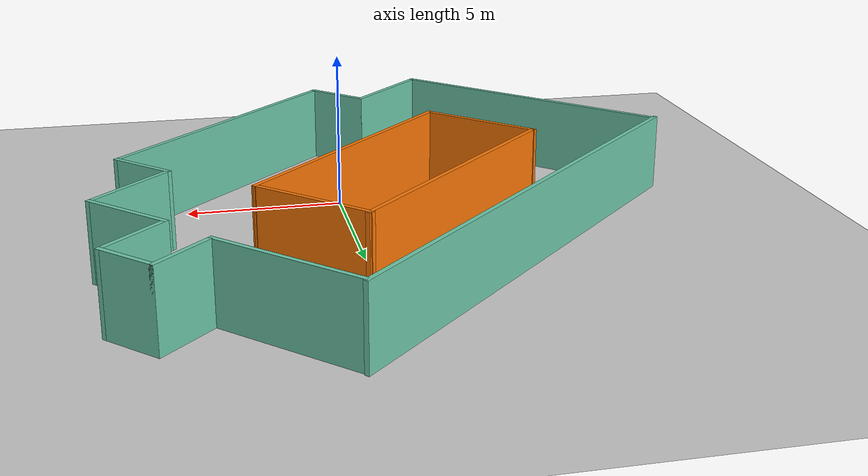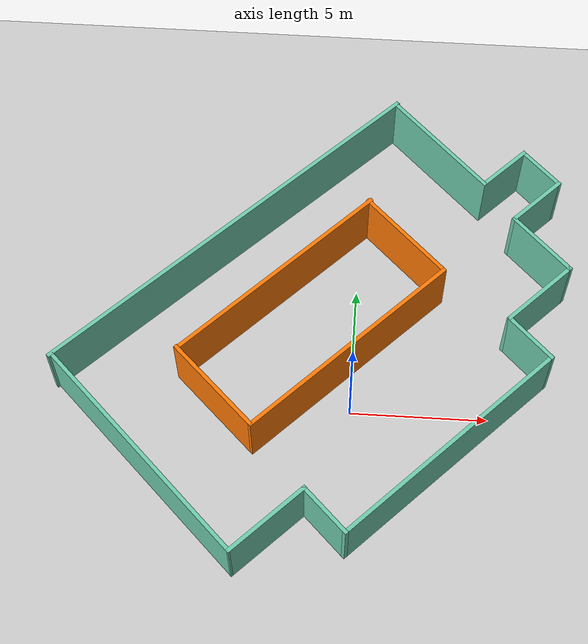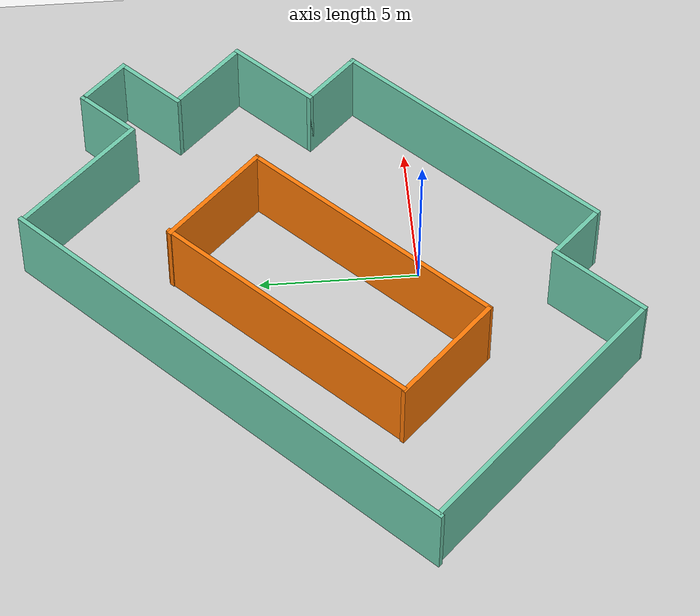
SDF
<sdf version="1.6">
 <world name="default">
  <light name="sun" type="directional">
   <pose>0 0 10 0 -0 0</pose>
   <diffuse>0.8 0.8 0.8 1</diffuse>
   <specular>0.1 0.1 0.1 1</specular>
   <attenuation>
    <range>1000</range>
    <constant>0.9</constant>
    <linear>0.01</linear>
    <quadratic>0.001</quadratic>
   </attenuation>
   <direction>-0.5 0.5 -1</direction>
  </light>
  <model name="ground_plane">
   <static>1</static>
   <link name="link">
    <collision name="collision">
     <geometry><plane><normal>0 0 1</normal><size>100 100</size></plane></geometry>
     <surface><friction><ode><mu>100</mu><mu2>50</mu2></ode></friction></surface>
    </collision>
    <visual name="visual">
     <cast_shadows>0</cast_shadows>
     <geometry><plane><normal>0 0 1</normal><size>100 100</size></plane></geometry>
     <material>
      <script><uri>file://media/materials/scripts/gazebo.material</uri><name>Gazebo/Grey</name></script>
     </material>
    </visual>
   </link>
  </model>
  <gravity>0 0 -9.8</gravity>
  <magnetic_field>6e-06 2.3e-05 -4.2e-05</magnetic_field>
  <atmosphere type="adiabatic"/>
  <physics name="default_physics" default="0" type="ode">
   <max_step_size>0.001</max_step_size>
   <real_time_factor>1</real_time_factor>
   <real_time_update_rate>1000</real_time_update_rate>
  </physics>
  <scene><ambient>0.4 0.4 0.4 1</ambient><background>0.7 0.7 0.7 1</background><shadows>1</shadows></scene>
  <spherical_coordinates>
   <surface_model>EARTH_WGS84</surface_model>
   <latitude_deg>0</latitude_deg>
   <longitude_deg>0</longitude_deg>
   <elevation>0</elevation>
   <heading_deg>0</heading_deg>
  </spherical_coordinates>
  <model name="DEH2">
   <pose>-1.51231 2.91676 0 0 -0 0</pose>
   <link name="Wall_13">
    <collision name="Wall_13_Collision">
     <geometry><box><size>16.871 0.15 2.5</size></box></geometry>
     <pose>0 0 1.25 0 -0 0</pose>
    </collision>
    <visual name="Wall_13_Visual">
     <pose>0 0 1.25 0 -0 0</pose>
     <geometry><box><size>16.871 0.15 2.5</size></box></geometry>
     <material>
      <script><uri>file://media/materials/scripts/gazebo.material</uri><name>Gazebo/Grey</name></script>
      <ambient>0.435294 0.796078 0.67451 1</ambient>
     </material>
    </visual>
    <pose>-3.28805 3.41317 0 0 0 -2.3666</pose>
   </link>
   <link name="Wall_18">
    <collision name="Wall_18_Collision">
     <geometry><box><size>9.83707 0.15 2.5</size></box></geometry>
     <pose>0 0 1.25 0 -0 0</pose>
    </collision>
    <visual name="Wall_18_Visual">
     <pose>0 0 1.25 0 -0 0</pose>
     <geometry><box><size>9.83707 0.15 2.5</size></box></geometry>
     <material>
      <script><uri>file://media/materials/scripts/gazebo.material</uri><name>Gazebo/Grey</name></script>
      <ambient>0.435294 0.796078 0.67451 1</ambient>
     </material>
    </visual>
    <pose>-5.70139 -5.84993 0 0 0 -0.781979</pose>
   </link>
   <link name="Wall_19">
    <collision name="Wall_19_Collision">
     <geometry><box><size>3.5 0.15 2.5</size></box></geometry>
     <pose>0 0 1.25 0 -0 0</pose>
    </collision>
    <visual name="Wall_19_Visual">
     <pose>0 0 1.25 0 -0 0</pose>
     <geometry><box><size>3.5 0.15 2.5</size></box></geometry>
     <material>
      <script><uri>file://media/materials/scripts/gazebo.material</uri><name>Gazebo/Grey</name></script>
      <ambient>0.435294 0.796078 0.67451 1</ambient>
     </material>
    </visual>
    <pose>-1.08041 -8.07869 0 0 -0 0.785398</pose>
   </link>
   <link name="Wall_20">
    <collision name="Wall_20_Collision">
     <geometry><box><size>2.25 0.15 2.5</size></box></geometry>
     <pose>0 0 1.25 0 -0 0</pose>
    </collision>
    <visual name="Wall_20_Visual">
     <pose>0 0 1.25 0 -0 0</pose>
     <geometry><box><size>2.25 0.15 2.5</size></box></geometry>
     <material>
      <script><uri>file://media/materials/scripts/gazebo.material</uri><name>Gazebo/Grey</name></script>
      <ambient>0.435294 0.796078 0.67451 1</ambient>
     </material>
    </visual>
    <pose>0.846461 -7.63675 0 0 0 -0.785398</pose>
   </link>
   <link name="Wall_21">
    <collision name="Wall_21_Collision">
     <geometry><box><size>10 0.15 2.5</size></box></geometry>
     <pose>0 0 1.25 0 -0 0</pose>
    </collision>
    <visual name="Wall_21_Visual">
     <pose>0 0 1.25 0 -0 0</pose>
     <geometry><box><size>10 0.15 2.5</size></box></geometry>
     <material>
      <script><uri>file://media/materials/scripts/gazebo.material</uri><name>Gazebo/Grey</name></script>
      <ambient>0.435294 0.796078 0.67451 1</ambient>
     </material>
    </visual>
    <pose>5.07142 -4.89671 0 0 -0 0.785398</pose>
   </link>
   <link name="Wall_22">
    <collision name="Wall_22_Collision">
     <geometry><box><size>2.25 0.15 2.5</size></box></geometry>
     <pose>0 0 1.25 0 -0 0</pose>
    </collision>
    <visual name="Wall_22_Visual">
     <pose>0 0 1.25 0 -0 0</pose>
     <geometry><box><size>2.25 0.15 2.5</size></box></geometry>
     <material>
      <script><uri>file://media/materials/scripts/gazebo.material</uri><name>Gazebo/Grey</name></script>
      <ambient>0.435294 0.796078 0.67451 1</ambient>
     </material>
    </visual>
    <pose>7.81146 -0.671748 0 0 -0 2.35619</pose>
   </link>
   <link name="Wall_23">
    <collision name="Wall_23_Collision">
     <geometry><box><size>3.25 0.15 2.5</size></box></geometry>
     <pose>0 0 1.25 0 -0 0</pose>
    </collision>
    <visual name="Wall_23_Visual">
     <pose>0 0 1.25 0 -0 0</pose>
     <geometry><box><size>3.25 0.15 2.5</size></box></geometry>
     <material>
      <script><uri>file://media/materials/scripts/gazebo.material</uri><name>Gazebo/Grey</name></script>
      <ambient>0.435294 0.796078 0.67451 1</ambient>
     </material>
    </visual>
    <pose>8.16502 1.16673 0 0 -0 0.785398</pose>
   </link>
   <link name="Wall_24">
    <collision name="Wall_24_Collision">
     <geometry><box><size>3 0.15 2.5</size></box></geometry>
     <pose>0 0 1.25 0 -0 0</pose>
    </collision>
    <visual name="Wall_24_Visual">
     <pose>0 0 1.25 0 -0 0</pose>
     <geometry><box><size>3 0.15 2.5</size></box></geometry>
     <material>
      <script><uri>file://media/materials/scripts/gazebo.material</uri><name>Gazebo/Grey</name></script>
      <ambient>0.435294 0.796078 0.67451 1</ambient>
     </material>
    </visual>
    <pose>8.25341 3.27037 0 0 -0 2.35619</pose>
   </link>
   <link name="Wall_25">
    <collision name="Wall_25_Collision">
     <geometry><box><size>2.5 0.15 2.5</size></box></geometry>
     <pose>0 0 1.25 0 -0 0</pose>
    </collision>
    <visual name="Wall_25_Visual">
     <pose>0 0 1.25 0 -0 0</pose>
     <geometry><box><size>2.5 0.15 2.5</size></box></geometry>
     <material>
      <script><uri>file://media/materials/scripts/gazebo.material</uri><name>Gazebo/Grey</name></script>
      <ambient>0.435294 0.796078 0.67451 1</ambient>
     </material>
    </visual>
    <pose>8.07663 5.10885 0 0 -0 0.785398</pose>
   </link>
   <link name="Wall_26">
    <collision name="Wall_26_Collision">
     <geometry><box><size>2 0.15 2.5</size></box></geometry>
     <pose>0 0 1.25 0 -0 0</pose>
    </collision>
    <visual name="Wall_26_Visual">
     <pose>0 0 1.25 0 -0 0</pose>
     <geometry><box><size>2 0.15 2.5</size></box></geometry>
     <material>
      <script><uri>file://media/materials/scripts/gazebo.material</uri><name>Gazebo/Grey</name></script>
      <ambient>0.435294 0.796078 0.67451 1</ambient>
     </material>
    </visual>
    <pose>8.25341 6.59377 0 0 -0 2.35619</pose>
   </link>
   <link name="Wall_27">
    <collision name="Wall_27_Collision">
     <geometry><box><size>2.25 0.15 2.5</size></box></geometry>
     <pose>0 0 1.25 0 -0 0</pose>
    </collision>
    <visual name="Wall_27_Visual">
     <pose>0 0 1.25 0 -0 0</pose>
     <geometry><box><size>2.25 0.15 2.5</size></box></geometry>
     <material>
      <script><uri>file://media/materials/scripts/gazebo.material</uri><name>Gazebo/Grey</name></script>
      <ambient>0.435294 0.796078 0.67451 1</ambient>
     </material>
    </visual>
    <pose>6.85687 6.50539 0 0 0 -2.35619</pose>
   </link>
   <link name="Wall_28">
    <collision name="Wall_28_Collision">
     <geometry><box><size>5 0.15 2.5</size></box></geometry>
     <pose>0 0 1.25 0 -0 0</pose>
    </collision>
    <visual name="Wall_28_Visual">
     <pose>0 0 1.25 0 -0 0</pose>
     <geometry><box><size>5 0.15 2.5</size></box></geometry>
     <material>
      <script><uri>file://media/materials/scripts/gazebo.material</uri><name>Gazebo/Grey</name></script>
      <ambient>0.435294 0.796078 0.67451 1</ambient>
     </material>
    </visual>
    <pose>4.39967 7.47766 0 0 -0 2.35619</pose>
   </link>
   <link name="Wall_5">
    <collision name="Wall_5_Collision">
     <geometry><box><size>4.12896 0.15 2.5</size></box></geometry>
     <pose>0 0 1.25 0 -0 0</pose>
    </collision>
    <visual name="Wall_5_Visual">
     <pose>0 0 1.25 0 -0 0</pose>
     <geometry><box><size>4.12896 0.15 2.5</size></box></geometry>
     <material>
      <script><uri>file://media/materials/scripts/gazebo.material</uri><name>Gazebo/Grey</name></script>
      <ambient>0.996078 0.47451 0.0196078 1</ambient>
     </material>
    </visual>
    <pose>-3.36281 -3.22878 0 0 0 -0.775207</pose>
   </link>
   <link name="Wall_6">
    <collision name="Wall_6_Collision">
     <geometry><box><size>9.43651 0.15 2.5</size></box></geometry>
     <pose>0 0 1.25 0 -0 0</pose>
    </collision>
    <visual name="Wall_6_Visual">
     <pose>0 0 1.25 0 -0 0</pose>
     <geometry><box><size>9.43651 0.15 2.5</size></box></geometry>
     <material>
      <script><uri>file://media/materials/scripts/gazebo.material</uri><name>Gazebo/Grey</name></script>
      <ambient>0.996078 0.47451 0.0196078 1</ambient>
     </material>
    </visual>
    <pose>1.37669 -1.37305 0 0 -0 0.785398</pose>
   </link>
   <link name="Wall_7">
    <collision name="Wall_7_Collision">
     <geometry><box><size>4.12896 0.15 2.5</size></box></geometry>
     <pose>0 0 1.25 0 -0 0</pose>
    </collision>
    <visual name="Wall_7_Visual">
     <pose>0 0 1.25 0 -0 0</pose>
     <geometry><box><size>4.12896 0.15 2.5</size></box></geometry>
     <material>
      <script><uri>file://media/materials/scripts/gazebo.material</uri><name>Gazebo/Grey</name></script>
      <ambient>0.996078 0.47451 0.0196078 1</ambient>
     </material>
    </visual>
    <pose>3.20375 3.33777 0 0 -0 2.36639</pose>
   </link>
   <link name="Wall_8">
    <collision name="Wall_8_Collision">
     <geometry><box><size>9.43651 0.15 2.5</size></box></geometry>
     <pose>0 0 1.25 0 -0 0</pose>
    </collision>
    <visual name="Wall_8_Visual">
     <pose>0 0 1.25 0 -0 0</pose>
     <geometry><box><size>9.43651 0.15 2.5</size></box></geometry>
     <material>
      <script><uri>file://media/materials/scripts/gazebo.material</uri><name>Gazebo/Grey</name></script>
      <ambient>0.996078 0.47451 0.0196078 1</ambient>
     </material>
    </visual>
    <pose>-1.43118 1.46999 0 0 0 -2.35619</pose>
   </link>
   <static>1</static>
  </model>
 </world>
</sdf>
